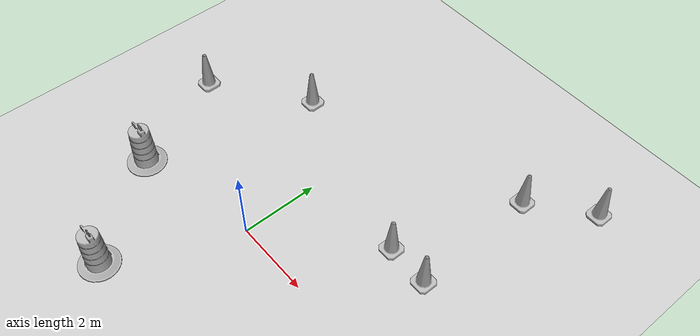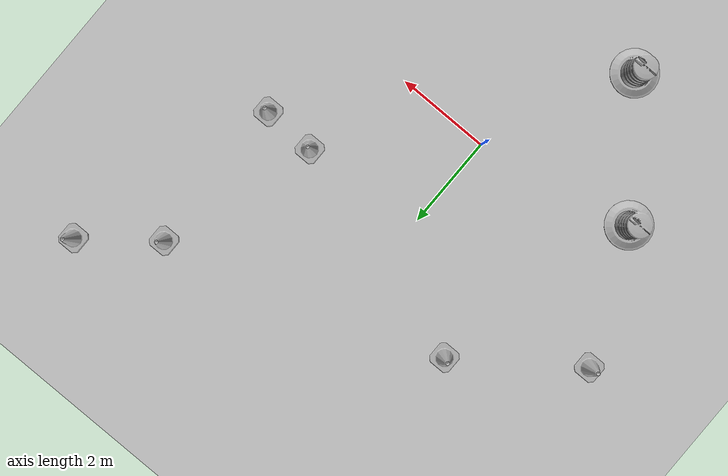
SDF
<sdf version="1.7">
 <world name="default">
  <light name="sun" type="directional">
   <pose>0 0 10 0 -0 0</pose>
   <diffuse>0.8 0.8 0.8 1</diffuse>
   <specular>0.2 0.2 0.2 1</specular>
   <attenuation>
    <range>1000</range>
    <constant>0.9</constant>
    <linear>0.01</linear>
    <quadratic>0.001</quadratic>
   </attenuation>
   <direction>-0.5 0.1 -0.9</direction>
   <spot><inner_angle>0</inner_angle><outer_angle>0</outer_angle><falloff>0</falloff></spot>
  </light>
  <model name="ground_plane">
   <static>1</static>
   <link name="link">
    <collision name="collision">
     <geometry><plane><normal>0 0 1</normal><size>100 100</size></plane></geometry>
     <surface><friction><ode><mu>100</mu><mu2>50</mu2></ode></friction></surface>
    </collision>
    <visual name="visual">
     <cast_shadows>0</cast_shadows>
     <geometry><plane><normal>0 0 1</normal><size>100 100</size></plane></geometry>
     <material>
      <script><uri>file://media/materials/scripts/gazebo.material</uri><name>Gazebo/Grey</name></script>
     </material>
    </visual>
   </link>
  </model>
  <gravity>0 0 -9.8</gravity>
  <magnetic_field>6e-06 2.3e-05 -4.2e-05</magnetic_field>
  <atmosphere type="adiabatic"/>
  <physics type="ode">
   <max_step_size>0.001</max_step_size>
   <real_time_factor>1</real_time_factor>
   <real_time_update_rate>1000</real_time_update_rate>
  </physics>
  <scene><ambient>0.4 0.4 0.4 1</ambient><background>0.7 0.7 0.7 1</background><shadows>1</shadows></scene>
  <audio><device>default</device></audio>
  <spherical_coordinates>
   <surface_model>EARTH_WGS84</surface_model>
   <latitude_deg>0</latitude_deg>
   <longitude_deg>0</longitude_deg>
   <elevation>0</elevation>
   <heading_deg>0</heading_deg>
  </spherical_coordinates>
  <model name="Construction Cone">
   <link name="link">
    <collision name="collision">
     <geometry>
      <mesh><scale>10 10 10</scale><uri>model://construction_cone/meshes/construction_cone.dae</uri></mesh>
     </geometry>
    </collision>
    <visual name="visual">
     <geometry>
      <mesh><scale>10 10 10</scale><uri>model://construction_cone/meshes/construction_cone.dae</uri></mesh>
     </geometry>
    </visual>
    <inertial>
     <inertia><ixx>1</ixx><ixy>0</ixy><ixz>0</ixz><iyy>1</iyy><iyz>0</iyz><izz>1</izz></inertia>
     <mass>1</mass>
    </inertial>
   </link>
   <pose>3.72622 2.25263 -0 -0 -0 -0</pose>
  </model>
  <model name="Construction Cone_0">
   <link name="link">
    <collision name="collision">
     <geometry>
      <mesh><scale>10 10 10</scale><uri>model://construction_cone/meshes/construction_cone.dae</uri></mesh>
     </geometry>
    </collision>
    <visual name="visual">
     <geometry>
      <mesh><scale>10 10 10</scale><uri>model://construction_cone/meshes/construction_cone.dae</uri></mesh>
     </geometry>
    </visual>
    <inertial>
     <inertia><ixx>1</ixx><ixy>0</ixy><ixz>0</ixz><iyy>1</iyy><iyz>0</iyz><izz>1</izz></inertia>
     <mass>1</mass>
    </inertial>
   </link>
   <pose>2.59731 2.29419 -0 0 -0 0</pose>
  </model>
  <model name="Construction Cone_1">
   <link name="link">
    <collision name="collision">
     <geometry>
      <mesh><scale>10 10 10</scale><uri>model://construction_cone/meshes/construction_cone.dae</uri></mesh>
     </geometry>
    </collision>
    <visual name="visual">
     <geometry>
      <mesh><scale>10 10 10</scale><uri>model://construction_cone/meshes/construction_cone.dae</uri></mesh>
     </geometry>
    </visual>
    <inertial>
     <inertia><ixx>1</ixx><ixy>0</ixy><ixz>0</ixz><iyy>1</iyy><iyz>0</iyz><izz>1</izz></inertia>
     <mass>1</mass>
    </inertial>
   </link>
   <pose>-2.20526 3.77709 0 -0 -0 -0</pose>
  </model>
  <model name="Construction Cone_2">
   <link name="link">
    <collision name="collision">
     <geometry>
      <mesh><scale>10 10 10</scale><uri>model://construction_cone/meshes/construction_cone.dae</uri></mesh>
     </geometry>
    </collision>
    <visual name="visual">
     <geometry>
      <mesh><scale>10 10 10</scale><uri>model://construction_cone/meshes/construction_cone.dae</uri></mesh>
     </geometry>
    </visual>
    <inertial>
     <inertia><ixx>1</ixx><ixy>0</ixy><ixz>0</ixz><iyy>1</iyy><iyz>0</iyz><izz>1</izz></inertia>
     <mass>1</mass>
    </inertial>
   </link>
   <pose>-4.58177 2.04674 -0 0 -0 0</pose>
  </model>
  <model name="Construction Barrel">
   <link name="link">
    <inertial>
     <pose>0 0 0.4 0 -0 0</pose>
     <mass>500</mass>
     <inertia><ixx>51.2096</ixx><iyy>51.2096</iyy><izz>25</izz><ixy>0</ixy><ixz>0</ixz><iyz>0</iyz></inertia>
    </inertial>
    <collision name="collision">
     <geometry><mesh><uri>model://construction_barrel/meshes/construction_barrel.dae</uri></mesh></geometry>
    </collision>
    <visual name="visual">
     <geometry><mesh><uri>model://construction_barrel/meshes/construction_barrel.dae</uri></mesh></geometry>
    </visual>
   </link>
   <pose>-3.35336 -0.679428 -4e-06 -5e-06 -7e-06 -9e-06</pose>
  </model>
  <model name="Construction Barrel_0">
   <link name="link">
    <inertial>
     <pose>0 0 0.4 0 -0 0</pose>
     <mass>500</mass>
     <inertia><ixx>51.2096</ixx><iyy>51.2096</iyy><izz>25</izz><ixy>0</ixy><ixz>0</ixz><iyz>0</iyz></inertia>
    </inertial>
    <collision name="collision">
     <geometry><mesh><uri>model://construction_barrel/meshes/construction_barrel.dae</uri></mesh></geometry>
    </collision>
    <visual name="visual">
     <geometry><mesh><uri>model://construction_barrel/meshes/construction_barrel.dae</uri></mesh></geometry>
    </visual>
   </link>
   <pose>-1.45931 -3.11546 -2e-06 -7e-06 4e-06 -7e-06</pose>
  </model>
  <model name="Construction Cone_3">
   <link name="link">
    <collision name="collision">
     <geometry>
      <mesh><scale>10 10 10</scale><uri>model://construction_cone/meshes/construction_cone.dae</uri></mesh>
     </geometry>
    </collision>
    <visual name="visual">
     <geometry>
      <mesh><scale>10 10 10</scale><uri>model://construction_cone/meshes/construction_cone.dae</uri></mesh>
     </geometry>
    </visual>
    <inertial>
     <inertia><ixx>1</ixx><ixy>0</ixy><ixz>0</ixz><iyy>1</iyy><iyz>0</iyz><izz>1</izz></inertia>
     <mass>1</mass>
    </inertial>
   </link>
   <pose>5.10563 6.74716 -0 0 -0 0</pose>
  </model>
  <model name="Construction Cone_4">
   <link name="link">
    <collision name="collision">
     <geometry>
      <mesh><scale>10 10 10</scale><uri>model://construction_cone/meshes/construction_cone.dae</uri></mesh>
     </geometry>
    </collision>
    <visual name="visual">
     <geometry>
      <mesh><scale>10 10 10</scale><uri>model://construction_cone/meshes/construction_cone.dae</uri></mesh>
     </geometry>
    </visual>
    <inertial>
     <inertia><ixx>1</ixx><ixy>0</ixy><ixz>0</ixz><iyy>1</iyy><iyz>0</iyz><izz>1</izz></inertia>
     <mass>1</mass>
    </inertial>
   </link>
   <pose>3.66519 5.61011 -0 0 -0 0</pose>
  </model>
 </world>
</sdf>
